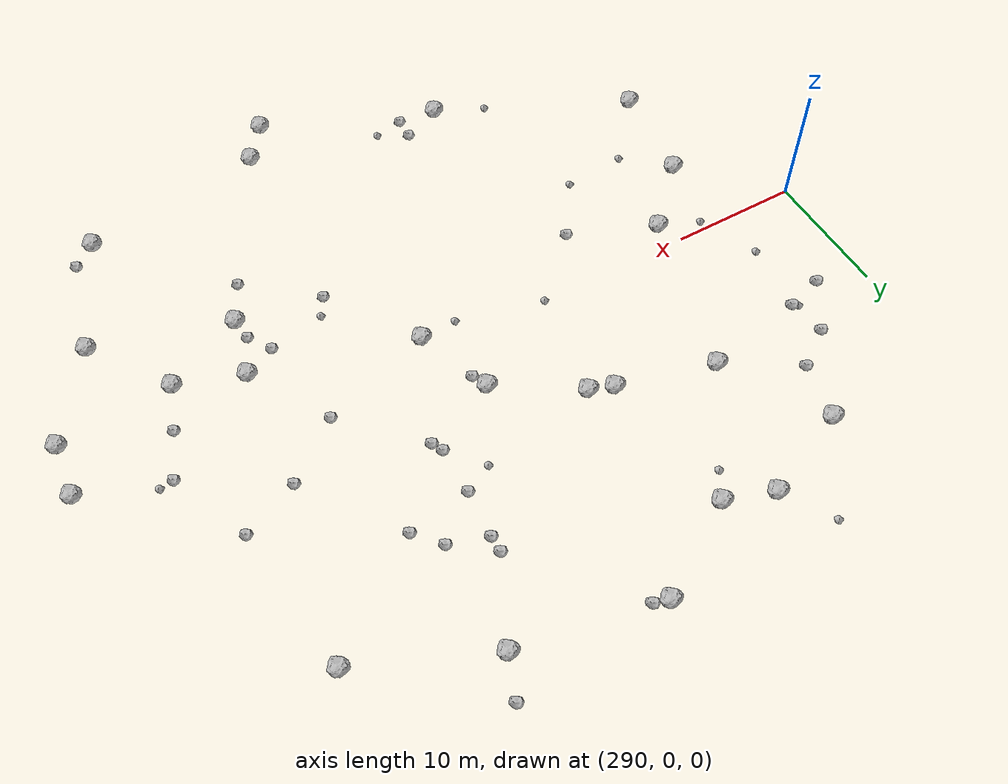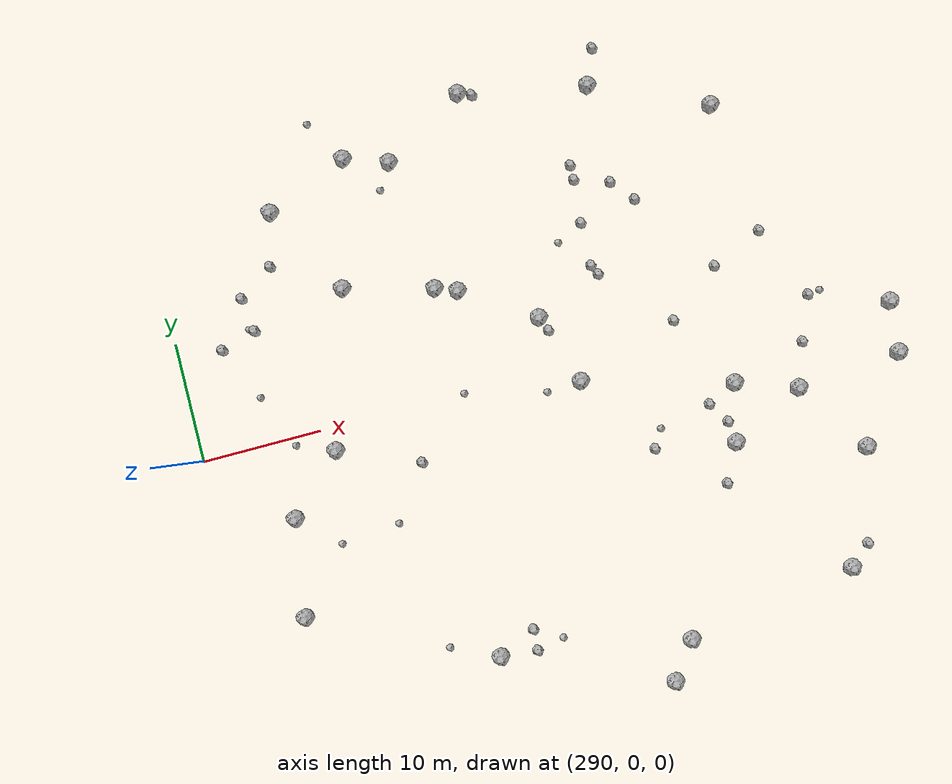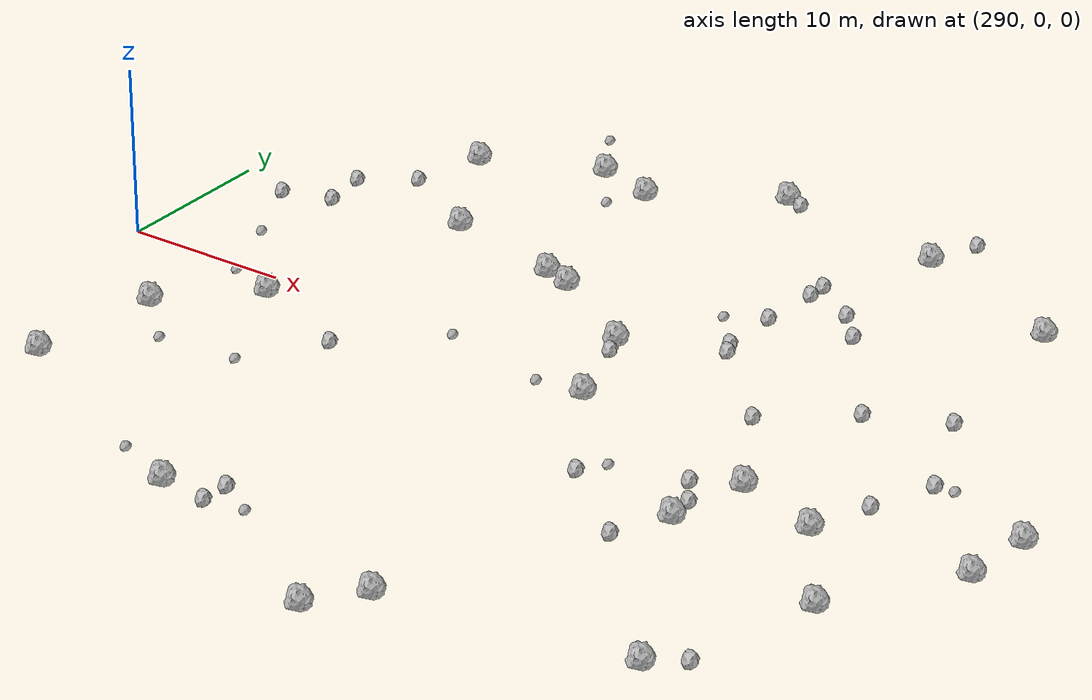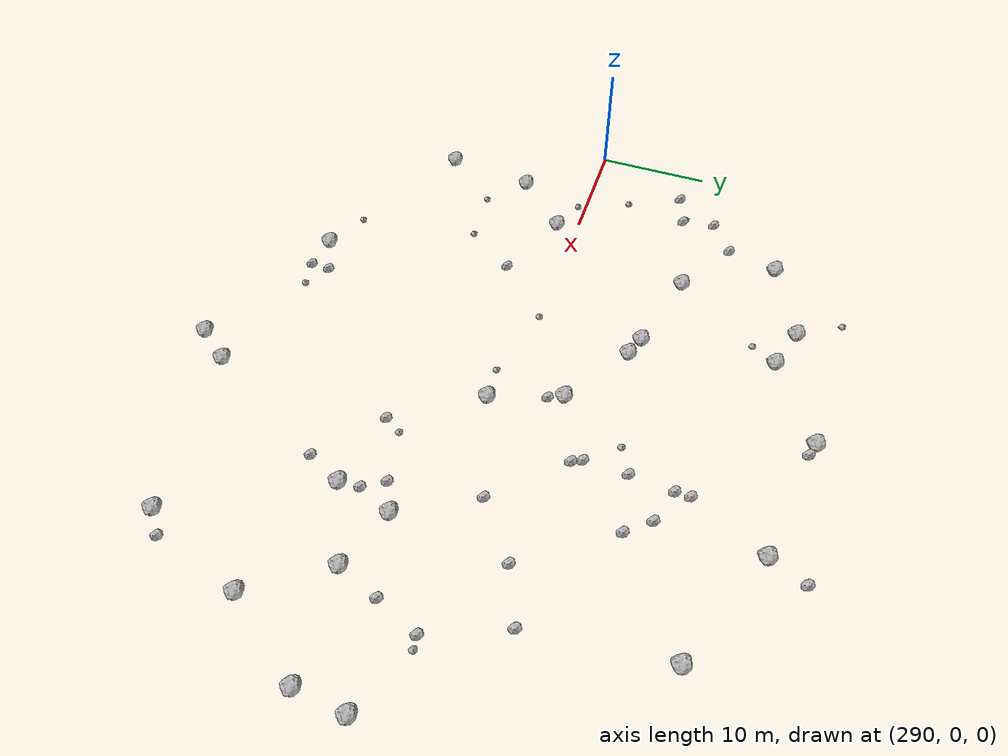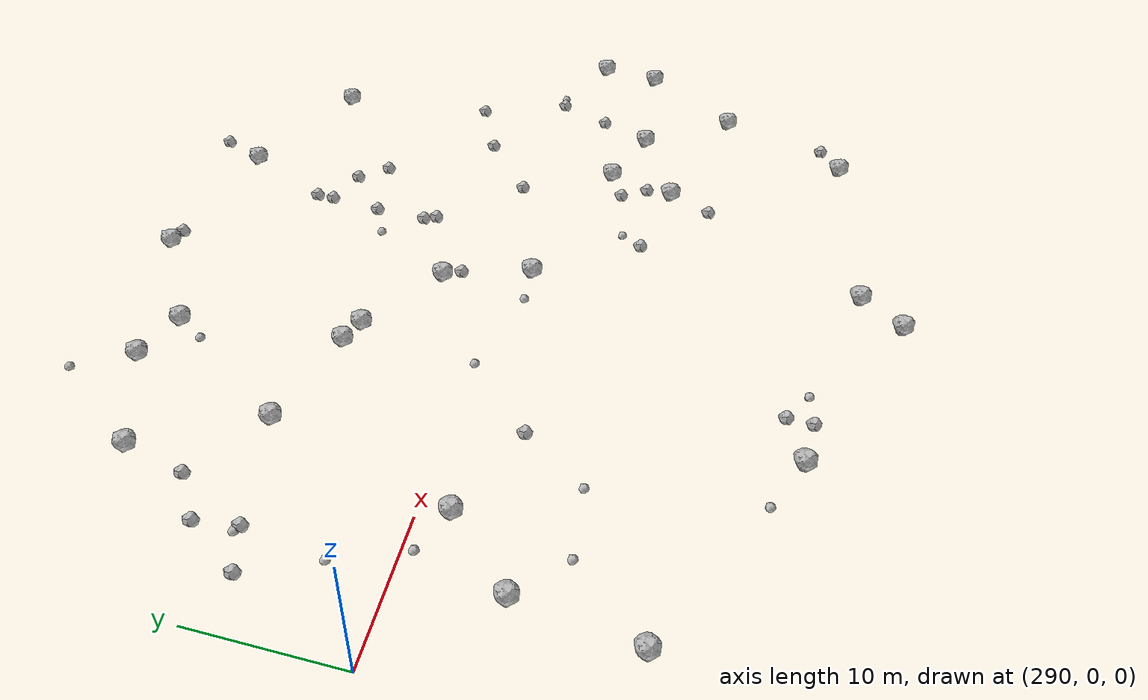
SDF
<sdf version="1.6">
 <world name="default">
  <include><uri>model://sun</uri></include>
  <model name="rock1_8_3">
   <include><uri>model://rock1</uri><pose>333.00380402062007 -9.6408469857424 0.5 0 0 0</pose></include>
  </model>
  <model name="rock1_8_4">
   <include><uri>model://rock1</uri><pose>343.3304456026177 -12.720990502437822 0.5 0 0 0</pose></include>
  </model>
  <model name="rock1_8_5">
   <include><uri>model://rock1</uri><pose>328.8851181730944 22.500172184240988 0.5 0 0 0</pose></include>
  </model>
  <model name="rock1_8_6">
   <include><uri>model://rock1</uri><pose>321.917167889239 -1.5173145310156464 0.5 0 0 0</pose></include>
  </model>
  <model name="rock1_8_7">
   <include><uri>model://rock1</uri><pose>309.86677270182963 -21.48184471458103 0.5 0 0 0</pose></include>
  </model>
  <model name="rock1_8_8">
   <include><uri>model://rock1</uri><pose>339.2165732450222 -6.624726057379277 0.5 0 0 0</pose></include>
  </model>
  <model name="rock1_8_9">
   <include><uri>model://rock1</uri><pose>312.1196213366278 9.032430502108042 0.5 0 0 0</pose></include>
  </model>
  <model name="rock1_8_10">
   <include><uri>model://rock1</uri><pose>313.92496693095325 8.361399511078808 0.5 0 0 0</pose></include>
  </model>
  <model name="rock1_8_11">
   <include><uri>model://rock1</uri><pose>338.499686994277 18.2411628862517 0.5 0 0 0</pose></include>
  </model>
  <model name="rock1_8_12">
   <include><uri>model://rock1</uri><pose>295.3014172114031 -14.42530070950215 0.5 0 0 0</pose></include>
  </model>
  <model name="rock1_8_13">
   <include><uri>model://rock1</uri><pose>323.0641928354276 -26.978127125123386 0.5 0 0 0</pose></include>
  </model>
  <model name="rock1_8_14">
   <include><uri>model://rock1</uri><pose>300.3785291859577 18.714725224535137 0.5 0 0 0</pose></include>
  </model>
  <model name="rock1_8_15">
   <include><uri>model://rock1</uri><pose>348.02881796472786 -5.876824719960471 0.5 0 0 0</pose></include>
  </model>
  <model name="rock1_8_16">
   <include><uri>model://rock1</uri><pose>318.09652492423584 24.60810563311616 0.5 0 0 0</pose></include>
  </model>
  <model name="rock1_8_17">
   <include><uri>model://rock1</uri><pose>348.5062736202525 -1.6173959066450294 0.5 0 0 0</pose></include>
  </model>
  <model name="rock1_8_18">
   <include><uri>model://rock1</uri><pose>339.4279055813806 -21.840830046007618 0.5 0 0 0</pose></include>
  </model>
  <model name="rock1_8_19">
   <include><uri>model://rock1</uri><pose>296.4018077036354 -6.48536746155677 0.5 0 0 0</pose></include>
  </model>
  <model name="rock1_8_20">
   <include><uri>model://rock1</uri><pose>311.0391108318907 20.351474477762117 0.5 0 0 0</pose></include>
  </model>
  <model name="rock1_8_21">
   <include><uri>model://rock1</uri><pose>307.36058609772215 21.61956134987036 0.5 0 0 0</pose></include>
  </model>
  <model name="rock1_8_22">
   <include><uri>model://rock1</uri><pose>319.9001539225525 4.470071606873432 0.5 0 0 0</pose></include>
  </model>
  <model name="rock1_8_23">
   <include><uri>model://rock1</uri><pose>304.68161458535184 10.978558705211512 0.5 0 0 0</pose></include>
  </model>
  <model name="rock1_8_24">
   <include><uri>model://rock1</uri><pose>334.18386765422036 -4.884691557038504 0.5 0 0 0</pose></include>
  </model>
  <model name="rock1_8_25">
   <include><uri>model://rock1</uri><pose>325.23361605453664 -24.08818378407724 0.5 0 0 0</pose></include>
  </model>
  <model name="rock1_8_26">
   <include><uri>model://rock1</uri><pose>300.9441871186631 -1.9221664532330998 0.5 0 0 0</pose></include>
  </model>
  <model name="rock2_8_0">
   <include><uri>model://rock2</uri><pose>325.7138857764499 16.270299545094268 0.3 0 0 0</pose></include>
  </model>
  <model name="rock2_8_1">
   <include><uri>model://rock2</uri><pose>326.38511605308054 -8.492254678678858 0.3 0 0 0</pose></include>
  </model>
  <model name="rock2_8_2">
   <include><uri>model://rock2</uri><pose>328.5924990599928 14.048864250742895 0.3 0 0 0</pose></include>
  </model>
  <model name="rock2_8_3">
   <include><uri>model://rock2</uri><pose>341.2587243293876 -20.357430592678195 0.3 0 0 0</pose></include>
  </model>
  <model name="rock2_8_4">
   <include><uri>model://rock2</uri><pose>296.6747521284274 9.425447125467741 0.3 0 0 0</pose></include>
  </model>
  <model name="rock2_8_5">
   <include><uri>model://rock2</uri><pose>299.1952771925586 14.348521655859933 0.3 0 0 0</pose></include>
  </model>
  <model name="rock2_8_6">
   <include><uri>model://rock2</uri><pose>331.4194105710154 -12.73959674321236 0.3 0 0 0</pose></include>
  </model>
  <model name="rock2_8_7">
   <include><uri>model://rock2</uri><pose>331.71423770084135 -6.077700911386394 0.3 0 0 0</pose></include>
  </model>
  <model name="rock2_8_8">
   <include><uri>model://rock2</uri><pose>320.37819653246083 3.248728990916227 0.3 0 0 0</pose></include>
  </model>
  <model name="rock2_8_9">
   <include><uri>model://rock2</uri><pose>325.68066420365864 15.008441038944646 0.3 0 0 0</pose></include>
  </model>
  <model name="rock2_8_10">
   <include><uri>model://rock2</uri><pose>342.1118312628807 0.6499013576475754 0.3 0 0 0</pose></include>
  </model>
  <model name="rock2_8_11">
   <include><uri>model://rock2</uri><pose>330.0911875802566 25.595574267256318 0.3 0 0 0</pose></include>
  </model>
  <model name="rock2_8_12">
   <include><uri>model://rock2</uri><pose>325.3129135713693 11.308082671098731 0.3 0 0 0</pose></include>
  </model>
  <model name="rock2_8_13">
   <include><uri>model://rock2</uri><pose>312.86570528582695 -21.81173728034956 0.3 0 0 0</pose></include>
  </model>
  <model name="rock2_8_14">
   <include><uri>model://rock2</uri><pose>319.1847475688232 24.26068810874463 0.3 0 0 0</pose></include>
  </model>
  <model name="rock2_8_15">
   <include><uri>model://rock2</uri><pose>325.60510204140496 6.763486302558043 0.3 0 0 0</pose></include>
  </model>
  <model name="rock2_8_16">
   <include><uri>model://rock2</uri><pose>330.2054064266892 12.112838066610706 0.3 0 0 0</pose></include>
  </model>
  <model name="rock2_8_17">
   <include><uri>model://rock2</uri><pose>335.18734247520945 4.944525766937971 0.3 0 0 0</pose></include>
  </model>
  <model name="rock2_8_18">
   <include><uri>model://rock2</uri><pose>296.26232992124415 12.330464891052358 0.3 0 0 0</pose></include>
  </model>
  <model name="rock2_8_19">
   <include><uri>model://rock2</uri><pose>312.9446139180409 -20.094953873272345 0.3 0 0 0</pose></include>
  </model>
  <model name="rock2_8_20">
   <include><uri>model://rock2</uri><pose>307.5025079412156 -4.671733297426513 0.3 0 0 0</pose></include>
  </model>
  <model name="rock2_8_21">
   <include><uri>model://rock2</uri><pose>332.8308527251751 -7.857194823810744 0.3 0 0 0</pose></include>
  </model>
  <model name="rock2_8_22">
   <include><uri>model://rock2</uri><pose>330.6796399666583 1.3936210017032522 0.3 0 0 0</pose></include>
  </model>
  <model name="rock2_8_23">
   <include><uri>model://rock2</uri><pose>293.7083420433971 8.531865516824787 0.3 0 0 0</pose></include>
  </model>
  <model name="rock2_8_24">
   <include><uri>model://rock2</uri><pose>340.5758281079895 -3.0406272774111045 0.3 0 0 0</pose></include>
  </model>
  <model name="rock2_8_25">
   <include><uri>model://rock2</uri><pose>339.58681741174127 6.890988024438933 0.3 0 0 0</pose></include>
  </model>
  <model name="rock2_8_26">
   <include><uri>model://rock2</uri><pose>325.2065325924256 7.619459964920672 0.3 0 0 0</pose></include>
  </model>
  <model name="rock3_8_0">
   <include><uri>model://rock3</uri><pose>312.26705417170234 -0.09183186331685533 0.2 0 0 0</pose></include>
  </model>
  <model name="rock3_8_1">
   <include><uri>model://rock3</uri><pose>299.51240972399944 -9.490368970278091 0.2 0 0 0</pose></include>
  </model>
  <model name="rock3_8_2">
   <include><uri>model://rock3</uri><pose>343.14886029658294 0.7498164240006417 0.2 0 0 0</pose></include>
  </model>
  <model name="rock3_8_3">
   <include><uri>model://rock3</uri><pose>315.1203260047189 -21.413130620691355 0.2 0 0 0</pose></include>
  </model>
  <model name="rock3_8_4">
   <include><uri>model://rock3</uri><pose>295.83343277901105 3.8665606840262967 0.2 0 0 0</pose></include>
  </model>
  <model name="rock3_8_5">
   <include><uri>model://rock3</uri><pose>297.7392253247093 -0.7235490874742823 0.2 0 0 0</pose></include>
  </model>
  <model name="rock3_8_6">
   <include><uri>model://rock3</uri><pose>318.9640354676255 -1.728562467725773 0.2 0 0 0</pose></include>
  </model>
  <model name="rock3_8_7">
   <include><uri>model://rock3</uri><pose>304.4209228681513 -9.07194946135419 0.2 0 0 0</pose></include>
  </model>
  <model name="rock3_8_8">
   <include><uri>model://rock3</uri><pose>327.28279447195524 -7.032693656897607 0.2 0 0 0</pose></include>
  </model>
  <model name="rock3_8_9">
   <include><uri>model://rock3</uri><pose>305.97424121052086 -19.836285121165538 0.2 0 0 0</pose></include>
  </model>
  <model name="rock3_8_10">
   <include><uri>model://rock3</uri><pose>305.0623779389865 25.330762032006646 0.2 0 0 0</pose></include>
  </model>
  <model name="rock3_8_11">
   <include><uri>model://rock3</uri><pose>296.2400367148447 9.63540281456249 0.2 0 0 0</pose></include>
  </model>
  <model name="rock3_8_12">
   <include><uri>model://rock3</uri><pose>309.68352129440535 18.266230365654607 0.2 0 0 0</pose></include>
  </model>
  <model name="rock3_8_13">
   <include><uri>model://rock3</uri><pose>323.0532620915497 10.151096193742326 0.2 0 0 0</pose></include>
  </model>
 </world>
</sdf>
